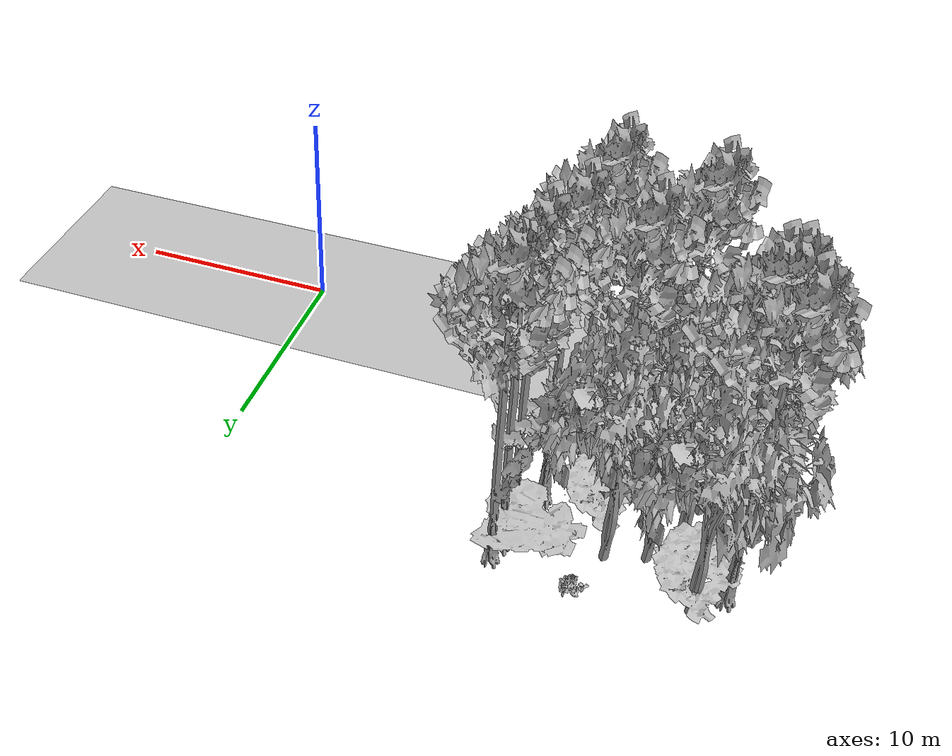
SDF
<sdf version="1.7">
 <world name="default">
  <model name="ground_plane">
   <static>1</static>
   <link name="link">
    <collision name="collision">
     <pose>-50 0 0 0 -0 0</pose>
     <geometry><plane><normal>0 0 1</normal><size>100 100</size></plane></geometry>
     <surface><contact><ode><min_depth>0.01</min_depth><max_vel>0</max_vel></ode></contact></surface>
    </collision>
    <visual name="grass">
     <cast_shadows>0</cast_shadows>
     <geometry>
      <mesh>
       <scale>0.5814285714285714 0.18142857142857144 0.1</scale>
       <uri>file://grass_plane/meshes/grass_plane.dae</uri>
      </mesh>
     </geometry>
    </visual>
   </link>
  </model>
  <model name="Tree 11">
   <static>1</static>
   <pose>-23.579800557243864 13.033755233226284 0 1.57079 -0 0</pose>
   <link name="link">
    <collision name="collision">
     <geometry><mesh><scale>3.5 5 3.5</scale><uri>model://tree_9/meshes/tree_9.obj</uri></mesh></geometry>
    </collision>
    <visual name="visual">
     <geometry><mesh><scale>3.5 5 3.5</scale><uri>model://tree_9/meshes/tree_9.obj</uri></mesh></geometry>
    </visual>
   </link>
  </model>
  <model name="Tree 74">
   <static>1</static>
   <pose>-18.41756671726979 12.78229468648048 0 1.57079 -0 0</pose>
   <link name="link">
    <collision name="collision">
     <geometry><mesh><scale>3.5 5 3.5</scale><uri>model://tree_2/meshes/tree_2.obj</uri></mesh></geometry>
    </collision>
    <visual name="visual">
     <geometry><mesh><scale>3.5 5 3.5</scale><uri>model://tree_2/meshes/tree_2.obj</uri></mesh></geometry>
    </visual>
   </link>
  </model>
  <model name="Tree 77">
   <static>1</static>
   <pose>-21.30612646153366 11.215205504263274 0 1.57079 -0 0</pose>
   <link name="link">
    <collision name="collision">
     <geometry><mesh><scale>3.5 5 3.5</scale><uri>model://tree_2/meshes/tree_2.obj</uri></mesh></geometry>
    </collision>
    <visual name="visual">
     <geometry><mesh><scale>3.5 5 3.5</scale><uri>model://tree_2/meshes/tree_2.obj</uri></mesh></geometry>
    </visual>
   </link>
  </model>
  <model name="Tree 85">
   <static>1</static>
   <pose>-14.115582637717338 12.084460283941851 0 1.57079 -0 0</pose>
   <link name="link">
    <collision name="collision">
     <geometry><mesh><scale>3.5 5 3.5</scale><uri>model://tree_9/meshes/tree_9.obj</uri></mesh></geometry>
    </collision>
    <visual name="visual">
     <geometry><mesh><scale>3.5 5 3.5</scale><uri>model://tree_9/meshes/tree_9.obj</uri></mesh></geometry>
    </visual>
   </link>
  </model>
  <model name="Tree 130">
   <static>1</static>
   <pose>-15.539162236230695 6.4348180447594245 0 1.57079 -0 0</pose>
   <link name="link">
    <collision name="collision">
     <geometry><mesh><scale>3.5 5 3.5</scale><uri>model://tree_9/meshes/tree_9.obj</uri></mesh></geometry>
    </collision>
    <visual name="visual">
     <geometry><mesh><scale>3.5 5 3.5</scale><uri>model://tree_9/meshes/tree_9.obj</uri></mesh></geometry>
    </visual>
   </link>
  </model>
  <model name="Tree 141">
   <static>1</static>
   <pose>-13.98943736108835 13.402432998200528 0 1.57079 -0 0</pose>
   <link name="link">
    <collision name="collision">
     <geometry><mesh><scale>3.5 5 3.5</scale><uri>model://tree_9/meshes/tree_9.obj</uri></mesh></geometry>
    </collision>
    <visual name="visual">
     <geometry><mesh><scale>3.5 5 3.5</scale><uri>model://tree_9/meshes/tree_9.obj</uri></mesh></geometry>
    </visual>
   </link>
  </model>
  <model name="Tree 166">
   <static>1</static>
   <pose>-15.035801789541118 13.015884912710678 0 1.57079 -0 0</pose>
   <link name="link">
    <collision name="collision">
     <geometry><mesh><scale>3 2 3</scale><uri>model://tree_3/meshes/tree_3.obj</uri></mesh></geometry>
    </collision>
    <visual name="visual">
     <geometry><mesh><scale>3 2 3</scale><uri>model://tree_3/meshes/tree_3.obj</uri></mesh></geometry>
    </visual>
   </link>
  </model>
  <model name="Tree 190">
   <static>1</static>
   <pose>-17.66125463474866 9.732604079037198 0 1.57079 -0 0</pose>
   <link name="link">
    <collision name="collision">
     <geometry><mesh><scale>4 2.5 4</scale><uri>model://tree_1/meshes/tree_1.obj</uri></mesh></geometry>
    </collision>
    <visual name="visual">
     <geometry><mesh><scale>4 2.5 4</scale><uri>model://tree_1/meshes/tree_1.obj</uri></mesh></geometry>
    </visual>
   </link>
  </model>
  <model name="Tree 226">
   <static>1</static>
   <pose>-22.854938291400998 11.461808193242145 0 1.57079 -0 0</pose>
   <link name="link">
    <collision name="collision">
     <geometry><mesh><scale>3.5 5 3.5</scale><uri>model://tree_9/meshes/tree_9.obj</uri></mesh></geometry>
    </collision>
    <visual name="visual">
     <geometry><mesh><scale>3.5 5 3.5</scale><uri>model://tree_9/meshes/tree_9.obj</uri></mesh></geometry>
    </visual>
   </link>
  </model>
  <model name="Tree 227">
   <static>1</static>
   <pose>-19.876259082418354 8.8883374109578 0 1.57079 -0 0</pose>
   <link name="link">
    <collision name="collision">
     <geometry><mesh><scale>3.5 5 3.5</scale><uri>model://tree_2/meshes/tree_2.obj</uri></mesh></geometry>
    </collision>
    <visual name="visual">
     <geometry><mesh><scale>3.5 5 3.5</scale><uri>model://tree_2/meshes/tree_2.obj</uri></mesh></geometry>
    </visual>
   </link>
  </model>
  <model name="Tree 258">
   <static>1</static>
   <pose>-14.967151757569532 10.12270592823426 0 1.57079 -0 0</pose>
   <link name="link">
    <collision name="collision">
     <geometry><mesh><scale>3.5 5 3.5</scale><uri>model://tree_9/meshes/tree_9.obj</uri></mesh></geometry>
    </collision>
    <visual name="visual">
     <geometry><mesh><scale>3.5 5 3.5</scale><uri>model://tree_9/meshes/tree_9.obj</uri></mesh></geometry>
    </visual>
   </link>
  </model>
  <model name="Tree 279">
   <static>1</static>
   <pose>-22.30591075648999 13.11514508229622 0 1.57079 -0 0</pose>
   <link name="link">
    <collision name="collision">
     <geometry><mesh><scale>4 2.5 4</scale><uri>model://tree_1/meshes/tree_1.obj</uri></mesh></geometry>
    </collision>
    <visual name="visual">
     <geometry><mesh><scale>4 2.5 4</scale><uri>model://tree_1/meshes/tree_1.obj</uri></mesh></geometry>
    </visual>
   </link>
  </model>
  <model name="Tree 316">
   <static>1</static>
   <pose>-13.777662864861796 14.22283124186217 0 1.57079 -0 0</pose>
   <link name="link">
    <collision name="collision">
     <geometry><mesh><scale>3.5 5 3.5</scale><uri>model://tree_9/meshes/tree_9.obj</uri></mesh></geometry>
    </collision>
    <visual name="visual">
     <geometry><mesh><scale>3.5 5 3.5</scale><uri>model://tree_9/meshes/tree_9.obj</uri></mesh></geometry>
    </visual>
   </link>
  </model>
  <model name="Tree 327">
   <static>1</static>
   <pose>-22.3789965509197 14.374499469920782 0 1.57079 -0 0</pose>
   <link name="link">
    <collision name="collision">
     <geometry><mesh><scale>3.5 5 3.5</scale><uri>model://tree_2/meshes/tree_2.obj</uri></mesh></geometry>
    </collision>
    <visual name="visual">
     <geometry><mesh><scale>3.5 5 3.5</scale><uri>model://tree_2/meshes/tree_2.obj</uri></mesh></geometry>
    </visual>
   </link>
  </model>
  <model name="Tree 329">
   <static>1</static>
   <pose>-21.752739927273407 8.75381656907922 0 1.57079 -0 0</pose>
   <link name="link">
    <collision name="collision">
     <geometry><mesh><scale>3.5 5 3.5</scale><uri>model://tree_2/meshes/tree_2.obj</uri></mesh></geometry>
    </collision>
    <visual name="visual">
     <geometry><mesh><scale>3.5 5 3.5</scale><uri>model://tree_2/meshes/tree_2.obj</uri></mesh></geometry>
    </visual>
   </link>
  </model>
  <model name="Tree 375">
   <static>1</static>
   <pose>-19.607422677289705 10.42791832693263 0 1.57079 -0 0</pose>
   <link name="link">
    <collision name="collision">
     <geometry><mesh><scale>3.5 5 3.5</scale><uri>model://tree_2/meshes/tree_2.obj</uri></mesh></geometry>
    </collision>
    <visual name="visual">
     <geometry><mesh><scale>3.5 5 3.5</scale><uri>model://tree_2/meshes/tree_2.obj</uri></mesh></geometry>
    </visual>
   </link>
  </model>
  <model name="Tree 415">
   <static>1</static>
   <pose>-22.728551849062892 6.578206592236221 0 1.57079 -0 0</pose>
   <link name="link">
    <collision name="collision">
     <geometry><mesh><scale>3.5 5 3.5</scale><uri>model://tree_2/meshes/tree_2.obj</uri></mesh></geometry>
    </collision>
    <visual name="visual">
     <geometry><mesh><scale>3.5 5 3.5</scale><uri>model://tree_2/meshes/tree_2.obj</uri></mesh></geometry>
    </visual>
   </link>
  </model>
  <model name="Tree 426">
   <static>1</static>
   <pose>-17.65565128607646 10.167543600610813 0 1.57079 -0 0</pose>
   <link name="link">
    <collision name="collision">
     <geometry><mesh><scale>3.5 5 3.5</scale><uri>model://tree_9/meshes/tree_9.obj</uri></mesh></geometry>
    </collision>
    <visual name="visual">
     <geometry><mesh><scale>3.5 5 3.5</scale><uri>model://tree_9/meshes/tree_9.obj</uri></mesh></geometry>
    </visual>
   </link>
  </model>
  <model name="Tree 515">
   <static>1</static>
   <pose>-19.470830102925817 6.812705517425332 0 1.57079 -0 0</pose>
   <link name="link">
    <collision name="collision">
     <geometry><mesh><scale>3.5 5 3.5</scale><uri>model://tree_9/meshes/tree_9.obj</uri></mesh></geometry>
    </collision>
    <visual name="visual">
     <geometry><mesh><scale>3.5 5 3.5</scale><uri>model://tree_9/meshes/tree_9.obj</uri></mesh></geometry>
    </visual>
   </link>
  </model>
  <model name="Tree 524">
   <static>1</static>
   <pose>-20.134436070666606 12.247867207472378 0 1.57079 -0 0</pose>
   <link name="link">
    <collision name="collision">
     <geometry><mesh><scale>3.5 5 3.5</scale><uri>model://tree_2/meshes/tree_2.obj</uri></mesh></geometry>
    </collision>
    <visual name="visual">
     <geometry><mesh><scale>3.5 5 3.5</scale><uri>model://tree_2/meshes/tree_2.obj</uri></mesh></geometry>
    </visual>
   </link>
  </model>
  <model name="Tree 537">
   <static>1</static>
   <pose>-22.30318929089588 11.610348683431702 0 1.57079 -0 0</pose>
   <link name="link">
    <collision name="collision">
     <geometry><mesh><scale>3.5 5 3.5</scale><uri>model://tree_9/meshes/tree_9.obj</uri></mesh></geometry>
    </collision>
    <visual name="visual">
     <geometry><mesh><scale>3.5 5 3.5</scale><uri>model://tree_9/meshes/tree_9.obj</uri></mesh></geometry>
    </visual>
   </link>
  </model>
  <model name="Bush 3">
   <static>1</static>
   <pose>-17.47500940683276 14.773622202976192 0 1.57079 -0 0</pose>
   <link name="link">
    <collision name="collision">
     <geometry><mesh><scale>2 2 2</scale><uri>model://bush_2/meshes/bush_2.obj</uri></mesh></geometry>
     <surface><contact><collide_without_contact>false</collide_without_contact></contact></surface>
    </collision>
    <visual name="visual">
     <geometry><mesh><scale>2 2 2</scale><uri>model://bush_2/meshes/bush_2.obj</uri></mesh></geometry>
    </visual>
   </link>
  </model>
 </world>
</sdf>
